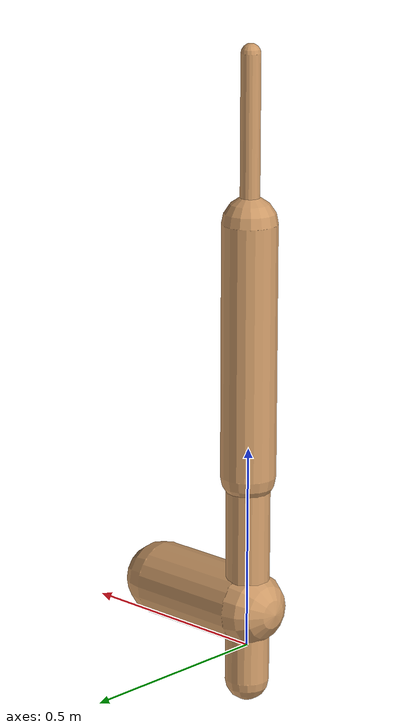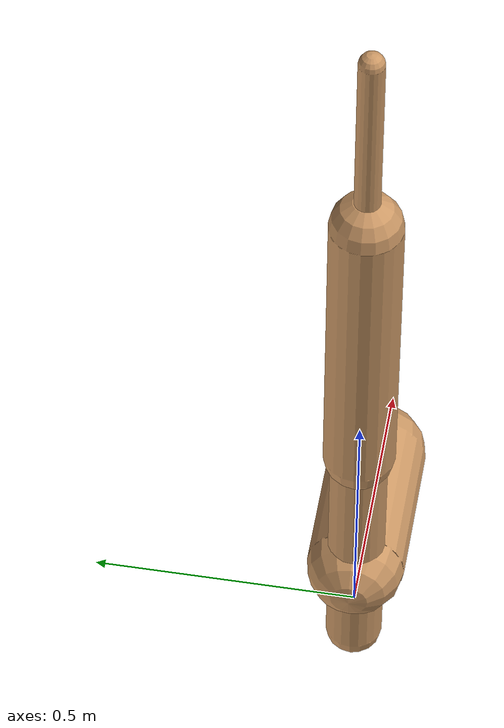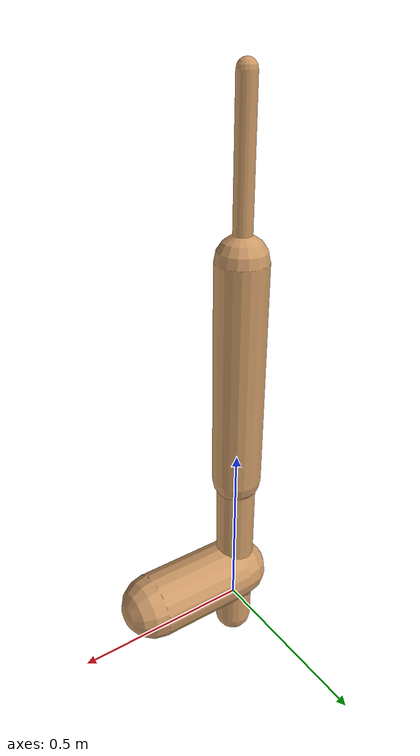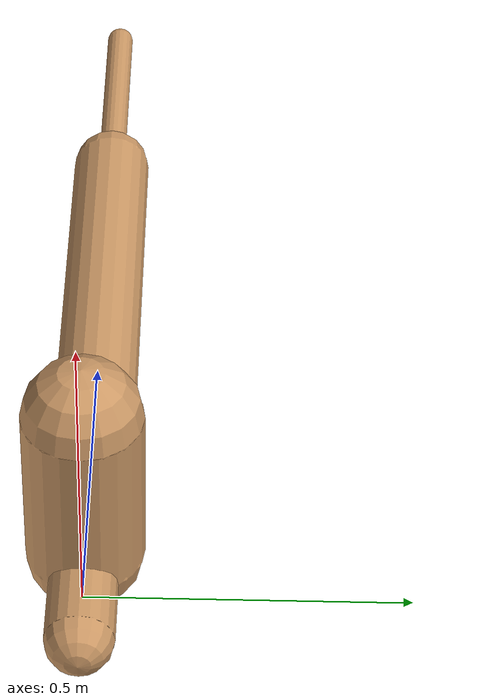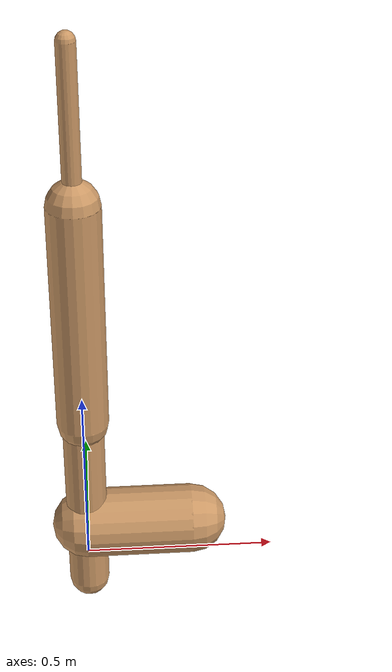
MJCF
<mujoco model="walker2d">
  <compiler angle="degree" coordinate="global" inertiafromgeom="true" />
  <default>
    <joint armature="0.01" damping=".1" limited="true" />
    <geom conaffinity="0" condim="3" contype="1" density="1000" friction="0.8 .1 .1" rgba="0.8 0.6 .4 1" />
  </default>
  <option integrator="RK4" timestep="0.002" />
  <worldbody>

    <body name="torso" pos="0 0 0.35264262180028716">
      <joint armature="0" axis="1 0 0" damping="0" limited="false" name="ignorex" pos="0 0 0" stiffness="0" type="slide" />
      <joint armature="0" axis="0 0 1" damping="0" limited="false" name="ignorez" pos="0 0 0" ref="1.25" stiffness="0" type="slide" />
      <joint armature="0" axis="0 1 0" damping="0" limited="false" name="ignorey" pos="0 0 0" stiffness="0" type="hinge" />
      <geom fromto="0 0 1.45 0 0 1.05" name="torso_geom" size="0.023774520242197745" type="capsule" />
      <body name="thigh">
        <joint axis="0 -1 0" name="thigh_joint" pos="0 0 1.05" range="-150 0" type="hinge" />
        <geom fromto="0.0 0.0 1.05 0.0 0.0 0.43295875809460077" name="thigh_geom" size="0.06714394693500107" type="capsule" />
        <body name="leg" pos="0.0 0.0 -0.1670412419053992">
          <joint axis="0 -1 0" name="leg_joint" pos="0 0 0.6" range="-150 0" type="hinge" />
          <geom fromto="0.0 0.0 0.6 0.0 0.0 -0.08560137989488797" name="leg_geom" size="0.05371515754800086" type="capsule" />
          <body name="foot" pos="0.0 0.0 -0.18560137989488798">
            <joint axis="0 -1 0" name="foot_joint" pos="0 0 0.1" range="-45 45" type="hinge" />
            <geom fromto="-0.0 0.0 0.1 0.28066379372793177 0.0 0.1" name="foot_geom" size="0.09242600273657378" type="capsule" />
          </body>
        </body>
      </body>

      <body name="thigh_left">
        <joint axis="0 -1 0" name="thigh_left_joint" pos="0 0 1.05" range="-150 0" type="hinge" />
        <geom fromto="0.0 0.0 1.05 0.0 0.0 0.43295875809460077" name="thigh_left_geom" rgba=".7 .3 .6 1" size="0.06714394693500107" type="capsule" />
        <body name="leg_left" pos="0.0 0.0 -0.1670412419053992">
          <joint axis="0 -1 0" name="leg_left_joint" pos="0 0 0.6" range="-150 0" type="hinge" />
          <geom fromto="0.0 0.0 0.6 0.0 0.0 -0.08560137989488797" name="leg_left_geom" rgba=".7 .3 .6 1" size="0.05371515754800086" type="capsule" />
          <body name="foot_left" pos="0.0 0.0 -0.18560137989488798">
            <joint axis="0 -1 0" name="foot_left_joint" pos="0 0 0.1" range="-45 45" type="hinge" />
            <geom fromto="-0.0 0.0 0.1 0.28066379372793177 0.0 0.1" name="foot_left_geom" rgba=".7 .3 .6 1" size="0.09242600273657378" type="capsule" />
          </body>
        </body>
      </body>
    </body>
  </worldbody>
  <actuator>

    <motor ctrllimited="true" ctrlrange="-1.0 1.0" gear="100" joint="thigh_joint" />
    <motor ctrllimited="true" ctrlrange="-1.0 1.0" gear="100" joint="leg_joint" />
    <motor ctrllimited="true" ctrlrange="-1.0 1.0" gear="100" joint="foot_joint" />
    <motor ctrllimited="true" ctrlrange="-1.0 1.0" gear="100" joint="thigh_left_joint" />
    <motor ctrllimited="true" ctrlrange="-1.0 1.0" gear="100" joint="leg_left_joint" />
    <motor ctrllimited="true" ctrlrange="-1.0 1.0" gear="100" joint="foot_left_joint" />

  </actuator>
</mujoco>
